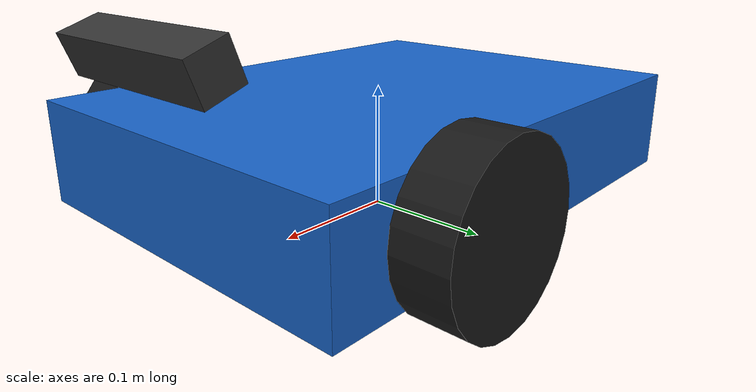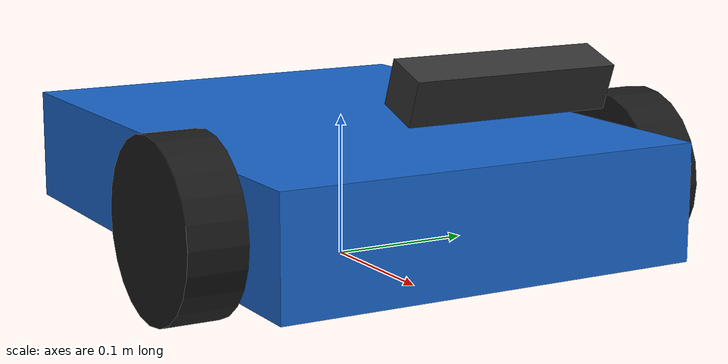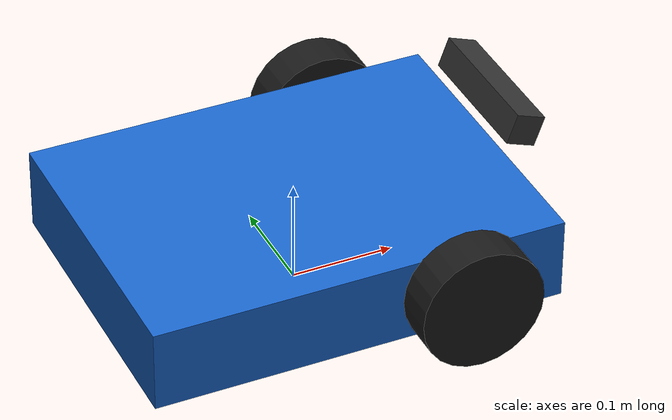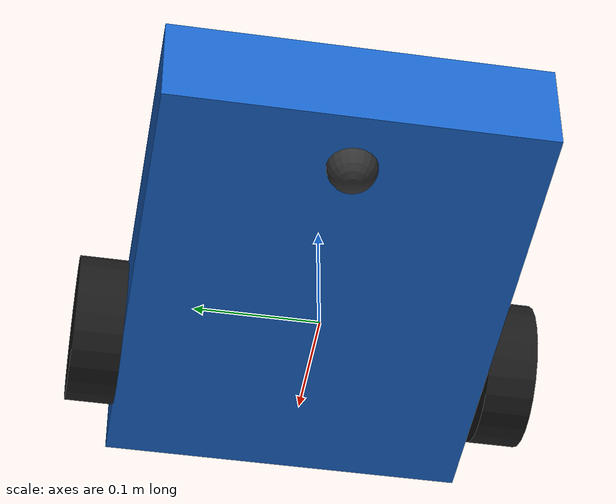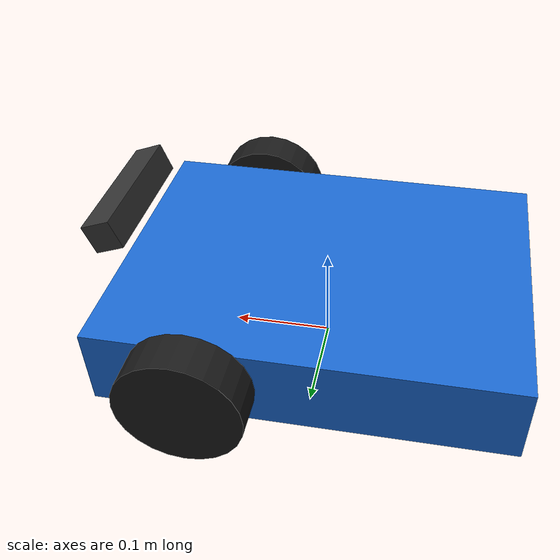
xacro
<?xml version="1.0"?>
<robot xmlns:xacro="http://www.ros.org/wiki/xacro" name="stereo_rig">

  <!-- PLUGINS                                    -->

  <!-- Enable Gazebo Sim Sensors Plugin -->
  <gazebo>
    <plugin
      filename="gz-sim-sensors-system"
      name="gz::sim::systems::Sensors">
      <render_engine>ogre2</render_engine>
    </plugin>
  </gazebo>

  <!-- Enable Gazebo Diff Drive Plugin -->
  <gazebo>
    <plugin
      filename="gz-sim-diff-drive-system"
      name="gz::sim::systems::DiffDrive">
      <left_joint>left_wheel_joint</left_joint>
      <right_joint>right_wheel_joint</right_joint>
      <wheel_separation>0.34</wheel_separation>
      <wheel_radius>0.08</wheel_radius>
      <odom_publish_frequency>30</odom_publish_frequency>
      <topic>/cmd_vel</topic>
      <odom_topic>/odom_raw</odom_topic>
      <publish_odom_tf>false</publish_odom_tf> <!-- Mute Gazebo's conflicting TF -->
      <tf_topic>/tf_gazebo</tf_topic>
      <frame_id>odom</frame_id>
      <child_frame_id>chassis</child_frame_id>
    </plugin>
  </gazebo>

  <!-- IMU -->
  <gazebo>
    <plugin
      filename="gz-sim-imu-system"
      name="gz::sim::systems::Imu">
    </plugin>
  </gazebo>

  <!-- BASE CHASSIS & CASTER                      -->

  <link name="chassis">
    <inertial>
      <mass value="2.0"/>
      <origin xyz="0 0 0.06" rpy="0 0 0"/>
      <inertia ixx="0.01" ixy="0.0" ixz="0.0" iyy="0.01" iyz="0.0" izz="0.01"/>
    </inertial>
    <visual>
      <origin xyz="0 0 0.06" rpy="0 0 0"/>
      <geometry>
        <box size="0.4 0.3 0.08"/>
      </geometry>
      <material name="blue">
        <color rgba="0.1 0.4 0.8 1.0"/>
      </material>
    </visual>
    <collision>
      <origin xyz="0 0 0.1" rpy="0 0 0"/>
      <geometry>
        <box size="0.3 0.2 0.02"/>
      </geometry>
    </collision>
  </link>

  <!-- Frictionless Caster Wheel (Rear) -->
  <joint name="caster_joint" type="fixed">
    <parent link="chassis"/>
    <child link="caster_link"/>
    <origin xyz="-0.15 0 0.02" rpy="0 0 0"/>
  </joint>

  <link name="caster_link">
    <visual>
      <geometry>
        <sphere radius="0.02"/>
      </geometry>
      <material name="dark_grey">
        <color rgba="0.2 0.2 0.2 1.0"/>
      </material>
    </visual>
    <collision>
      <geometry>
        <sphere radius="0.02"/>
      </geometry>
    </collision>
    <inertial>
      <mass value="0.1"/>
      <inertia ixx="0.0001" ixy="0" ixz="0" iyy="0.0001" iyz="0" izz="0.0001"/>
    </inertial>
  </link>

  <gazebo reference="caster_link">
    <mu1>0.001</mu1>
    <mu2>0.001</mu2>
  </gazebo>

  <!-- DRIVE WHEELS (MACRO)                       -->

  <xacro:macro name="wheel" params="prefix y_reflect">
    <link name="${prefix}_wheel">
      <visual>
        <origin xyz="0 0 0" rpy="1.5708 0 0"/>
        <geometry>
          <cylinder radius="0.06" length="0.04"/>
        </geometry>
        <material name="black">
          <color rgba="0.1 0.1 0.1 1.0"/>
        </material>
      </visual>
      <collision>
        <origin xyz="0 0 0" rpy="1.5708 0 0"/>
        <geometry>
          <cylinder radius="0.06" length="0.04"/>
        </geometry>
      </collision>
      <inertial>
        <mass value="0.5"/>
        <origin xyz="0 0 0" rpy="1.5708 0 0"/>
        <inertia ixx="0.001" ixy="0.0" ixz="0.0" iyy="0.001" iyz="0.0" izz="0.001"/>
      </inertial>
    </link>

    <joint name="${prefix}_wheel_joint" type="continuous">
      <parent link="chassis"/>
      <child link="${prefix}_wheel"/>
      <origin xyz="0.1 ${y_reflect * 0.17} 0.06" rpy="0 0 0"/>
      <axis xyz="0 1 0"/>
    </joint>
  </xacro:macro>

  <xacro:wheel prefix="left" y_reflect="1" />
  <xacro:wheel prefix="right" y_reflect="-1" />

  <!-- STEREO CAMERAS                             -->

  <joint name="camera_joint" type="fixed">
  <parent link="chassis"/>
  <child link="camera_link"/>
  <!-- Pitch down by 0.35 radians (~20 degrees) -->
  <origin xyz="0.2 0 0.15" rpy="0 0.35 0"/>
</joint>

  <link name="camera_link">
    <inertial>
      <mass value="0.05"/>
      <origin xyz="0 0 0" rpy="0 0 0"/>
      <inertia ixx="0.0001" ixy="0" ixz="0" iyy="0.0001" iyz="0" izz="0.0001"/>
    </inertial>
    <visual>
      <geometry>
        <box size="0.03 0.14 0.03"/>
      </geometry>
      <material name="dark_grey">
        <color rgba="0.2 0.2 0.2 1.0"/>
      </material>
    </visual>
  </link>

  <!-- Left Camera Optical Frame -->
  <joint name="left_camera_optical_joint" type="fixed">
    <parent link="camera_link"/>
    <child link="left_camera_optical_frame"/>
    <origin xyz="0 0 0" rpy="-1.5708 0 -1.5708"/>
  </joint>
  <link name="left_camera_optical_frame"/>

  <!-- Right Camera Optical Frame (100mm Y-offset matching Gazebo pose) -->
  <joint name="right_camera_optical_joint" type="fixed">
    <parent link="camera_link"/>
    <child link="right_camera_optical_frame"/>
    <origin xyz="0 -0.1 0" rpy="-1.5708 0 -1.5708"/>
  </joint>
  <link name="right_camera_optical_frame"/>

  <!-- Left Camera Sensor -->
  <gazebo reference="camera_link">
    <sensor type="camera" name="left_camera">
      <update_rate>10.0</update_rate>
      <topic>/stereo/left/image_raw</topic>
      <gz_frame_id>left_camera_optical_frame</gz_frame_id>
      <camera name="left">
        <horizontal_fov>1.74</horizontal_fov>
        <image>
          <width>640</width>
          <height>480</height>
          <format>R8G8B8</format>
        </image>
        <clip>
          <near>0.1</near>
          <far>10.0</far>
        </clip>
      </camera>
    </sensor>
  </gazebo>

  <!-- Right Camera Sensor -->
  <gazebo reference="camera_link">
    <sensor type="camera" name="right_camera">
      <update_rate>10.0</update_rate>
      <topic>/stereo/right/image_raw</topic>
      <pose>0 -0.1 0 0 0 0</pose>
      <gz_frame_id>right_camera_optical_frame</gz_frame_id>
      <camera name="right">
        <horizontal_fov>1.74</horizontal_fov>
        <image>
          <width>640</width>
          <height>480</height>
          <format>R8G8B8</format>
        </image>
        <clip>
          <near>0.1</near>
          <far>10.0</far>
        </clip>
      </camera>
    </sensor>
  </gazebo>

  <!-- IMU SENSOR                                 -->
  <link name="imu_link"/>

  <joint name="imu_joint" type="fixed">
    <parent link="chassis"/>
    <child link="imu_link"/>
    <origin xyz="0 0 0.15" rpy="0 0 0"/>
  </joint>

  <gazebo reference="imu_link">
    <sensor name="imu_sensor" type="imu">
      <always_on>true</always_on>
      <update_rate>50</update_rate>
      <gz_frame_id>imu_link</gz_frame_id>
      <topic>/imu/data</topic>
    </sensor>
  </gazebo>

</robot>
